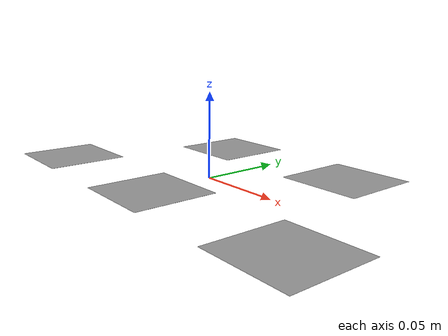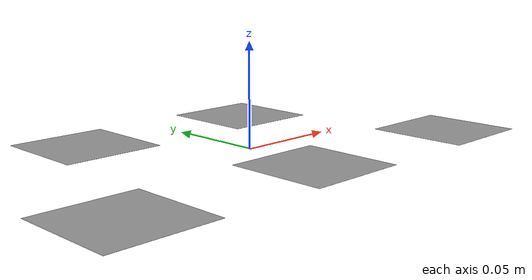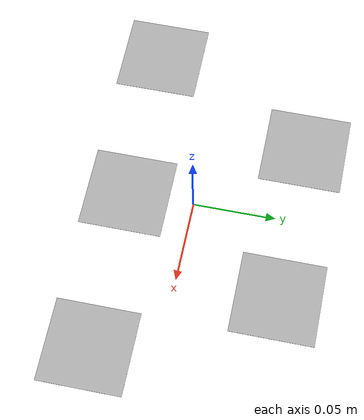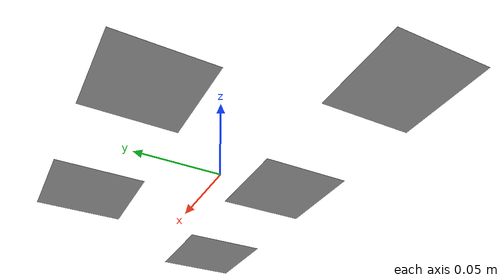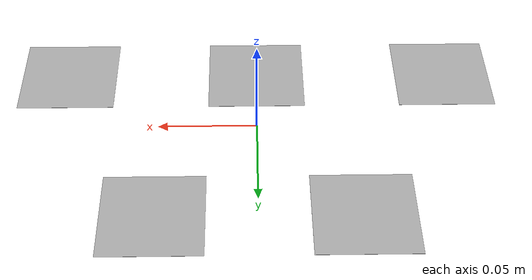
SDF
<?xml version='1.0'?>
<sdf version='1.6'>
  <model name='tagbackground'>
    <model name='Apriltag36_11_00000'>
      <link name='main'>
        <pose frame=''>0 0 0 0 -0 0</pose>
        <visual name='main_Visual'>
          <geometry>
            <box>
              <size>0.05 0.05 0.0001</size>
            </box>
          </geometry>
          <material>
            <script>
              <uri>model://Apriltag36_11_00000/materials/scripts</uri>
              <uri>model://Apriltag36_11_00000/materials/textures</uri>
              <name>Apriltag36_11_00000</name>
            </script>
          </material>
        </visual>
      </link>
      <static>1</static>
      <pose frame=''>-0.099357 -0.040128 0 0 -0 0</pose>
    </model>
    <model name='Apriltag36_11_00001'>
      <link name='main'>
        <pose frame=''>0 0 0 0 -0 0</pose>
        <visual name='main_Visual'>
          <geometry>
            <box>
              <size>0.05 0.05 0.0001</size>
            </box>
          </geometry>
          <material>
            <script>
              <uri>model://Apriltag36_11_00001/materials/scripts</uri>
              <uri>model://Apriltag36_11_00001/materials/textures</uri>
              <name>Apriltag36_11_00001</name>
            </script>
          </material>
        </visual>
      </link>
      <static>1</static>
      <pose frame=''>-0.04994 0.060191 0 0 -0 0</pose>
    </model>
    <model name='Apriltag36_11_00002'>
      <link name='main'>
        <pose frame=''>0 0 0 0 -0 0</pose>
        <visual name='main_Visual'>
          <geometry>
            <box>
              <size>0.05 0.05 0.0001</size>
            </box>
          </geometry>
          <material>
            <script>
              <uri>model://Apriltag36_11_00002/materials/scripts</uri>
              <uri>model://Apriltag36_11_00002/materials/textures</uri>
              <name>Apriltag36_11_00002</name>
            </script>
          </material>
        </visual>
      </link>
      <static>1</static>
      <pose frame=''>-8.7e-05 -0.040128 -0 0 -0 0</pose>
    </model>
    <model name='Apriltag36_11_00003'>
      <link name='main'>
        <pose frame=''>0 0 0 0 -0 0</pose>
        <visual name='main_Visual'>
          <geometry>
            <box>
              <size>0.05 0.05 0.0001</size>
            </box>
          </geometry>
          <material>
            <script>
              <uri>model://Apriltag36_11_00003/materials/scripts</uri>
              <uri>model://Apriltag36_11_00003/materials/textures</uri>
              <name>Apriltag36_11_00003</name>
            </script>
          </material>
        </visual>
      </link>
      <static>1</static>
      <pose frame=''>0.049958 0.060191 0 0 -0 0</pose>
    </model>
    <model name='Apriltag36_11_00004'>
      <link name='main'>
        <pose frame=''>0 0 0 0 -0 0</pose>
        <visual name='main_Visual'>
          <geometry>
            <box>
              <size>0.05 0.05 0.0001</size>
            </box>
          </geometry>
          <material>
            <script>
              <uri>model://Apriltag36_11_00004/materials/scripts</uri>
              <uri>model://Apriltag36_11_00004/materials/textures</uri>
              <name>Apriltag36_11_00004</name>
            </script>
          </material>
        </visual>
      </link>
      <static>1</static>
      <pose frame=''>0.099425 -0.040128 0 0 -0 0</pose>
    </model>
    <joint name='main_JOINT_1' type='fixed'>
      <parent>Apriltag36_11_00000::main</parent>
      <child>Apriltag36_11_00001::main</child>
      <pose frame=''>0 0 0 0 -0 0</pose>
      <physics>
        <ode>
          <limit>
            <cfm>0</cfm>
            <erp>0.2</erp>
          </limit>
          <suspension>
            <cfm>0</cfm>
            <erp>0.2</erp>
          </suspension>
        </ode>
      </physics>
    </joint>
    <joint name='main_JOINT_2' type='fixed'>
      <parent>Apriltag36_11_00000::main</parent>
      <child>Apriltag36_11_00002::main</child>
      <pose frame=''>0 0 0 0 -0 0</pose>
      <physics>
        <ode>
          <limit>
            <cfm>0</cfm>
            <erp>0.2</erp>
          </limit>
          <suspension>
            <cfm>0</cfm>
            <erp>0.2</erp>
          </suspension>
        </ode>
      </physics>
    </joint>
    <joint name='main_JOINT_3' type='fixed'>
      <parent>Apriltag36_11_00000::main</parent>
      <child>Apriltag36_11_00003::main</child>
      <pose frame=''>0 0 0 0 -0 0</pose>
      <physics>
        <ode>
          <limit>
            <cfm>0</cfm>
            <erp>0.2</erp>
          </limit>
          <suspension>
            <cfm>0</cfm>
            <erp>0.2</erp>
          </suspension>
        </ode>
      </physics>
    </joint>
    <joint name='main_JOINT_4' type='fixed'>
      <parent>Apriltag36_11_00000::main</parent>
      <child>Apriltag36_11_00004::main</child>
      <pose frame=''>0 0 0 0 -0 0</pose>
      <physics>
        <ode>
          <limit>
            <cfm>0</cfm>
            <erp>0.2</erp>
          </limit>
          <suspension>
            <cfm>0</cfm>
            <erp>0.2</erp>
          </suspension>
        </ode>
      </physics>
    </joint>
    <static>1</static>
    <allow_auto_disable>1</allow_auto_disable>
  </model>
</sdf>
